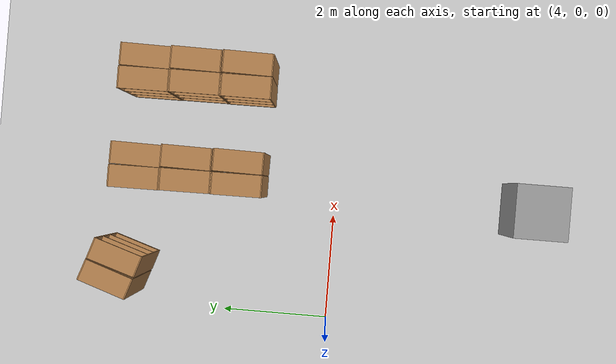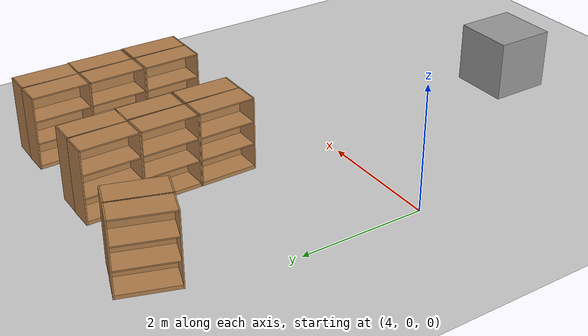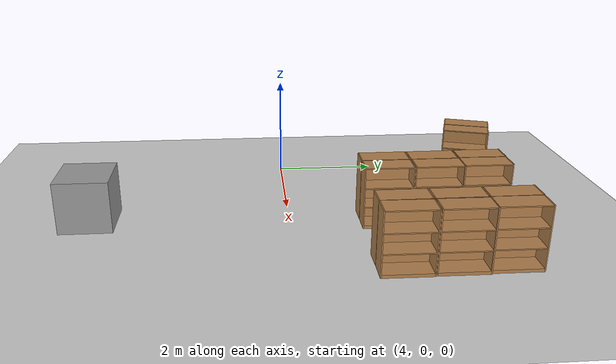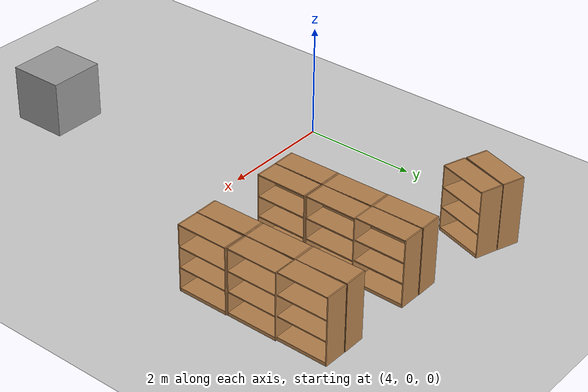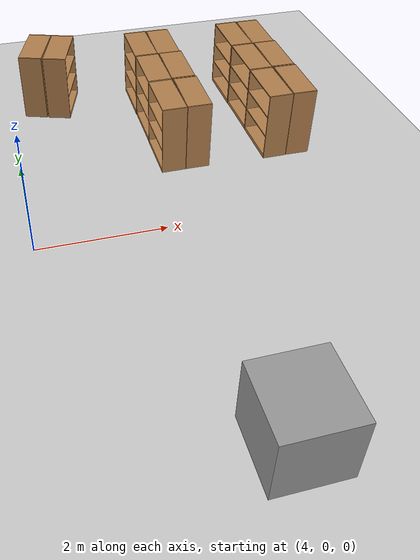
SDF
<sdf version="1.7">
 <world name="default">
  <model name="bookshelf_0">
   <static>1</static>
   <link name="link">
    <inertial><mass>1</mass></inertial>
    <collision name="back">
     <pose>0 0.005 0.6 0 -0 0</pose>
     <geometry><box><size>0.9 0.01 1.2</size></box></geometry>
    </collision>
    <visual name="visual1">
     <pose>0 0.005 0.6 0 -0 0</pose>
     <geometry><box><size>0.9 0.01 1.2</size></box></geometry>
     <material>
      <script><uri>file://media/materials/scripts/gazebo.material</uri><name>Gazebo/Wood</name></script>
     </material>
    </visual>
    <collision name="left_side">
     <pose>0.45 -0.195 0.6 0 -0 0</pose>
     <geometry><box><size>0.02 0.4 1.2</size></box></geometry>
    </collision>
    <visual name="visual2">
     <pose>0.45 -0.195 0.6 0 -0 0</pose>
     <geometry><box><size>0.02 0.4 1.2</size></box></geometry>
     <material>
      <script><uri>file://media/materials/scripts/gazebo.material</uri><name>Gazebo/Wood</name></script>
     </material>
    </visual>
    <collision name="right_side">
     <pose>-0.45 -0.195 0.6 0 -0 0</pose>
     <geometry><box><size>0.02 0.4 1.2</size></box></geometry>
    </collision>
    <visual name="visual3">
     <pose>-0.45 -0.195 0.6 0 -0 0</pose>
     <geometry><box><size>0.02 0.4 1.2</size></box></geometry>
     <material>
      <script><uri>file://media/materials/scripts/gazebo.material</uri><name>Gazebo/Wood</name></script>
     </material>
    </visual>
    <collision name="bottom">
     <pose>0 -0.195 0.03 0 -0 0</pose>
     <geometry><box><size>0.88 0.4 0.06</size></box></geometry>
    </collision>
    <visual name="visual4">
     <pose>0 -0.195 0.03 0 -0 0</pose>
     <geometry><box><size>0.88 0.4 0.06</size></box></geometry>
     <material>
      <script><uri>file://media/materials/scripts/gazebo.material</uri><name>Gazebo/Wood</name></script>
     </material>
    </visual>
    <collision name="top">
     <pose>0 -0.195 1.19 0 -0 0</pose>
     <geometry><box><size>0.88 0.4 0.02</size></box></geometry>
    </collision>
    <visual name="visual5">
     <pose>0 -0.195 1.19 0 -0 0</pose>
     <geometry><box><size>0.88 0.4 0.02</size></box></geometry>
     <material>
      <script><uri>file://media/materials/scripts/gazebo.material</uri><name>Gazebo/Wood</name></script>
     </material>
    </visual>
    <collision name="low_shelf">
     <pose>0 -0.195 0.43 0 -0 0</pose>
     <geometry><box><size>0.88 0.4 0.02</size></box></geometry>
    </collision>
    <visual name="visual6">
     <pose>0 -0.195 0.43 0 -0 0</pose>
     <geometry><box><size>0.88 0.4 0.02</size></box></geometry>
     <material>
      <script><uri>file://media/materials/scripts/gazebo.material</uri><name>Gazebo/Wood</name></script>
     </material>
    </visual>
    <collision name="high_shelf">
     <pose>0 -0.195 0.8 0 -0 0</pose>
     <geometry><box><size>0.88 0.4 0.02</size></box></geometry>
    </collision>
    <visual name="visual7">
     <pose>0 -0.195 0.8 0 -0 0</pose>
     <geometry><box><size>0.88 0.4 0.02</size></box></geometry>
     <material>
      <script><uri>file://media/materials/scripts/gazebo.material</uri><name>Gazebo/Wood</name></script>
     </material>
    </visual>
   </link>
   <pose>4.80639 3.91295 0 0 -0 1.26109</pose>
  </model>
  <model name="bookshelf_0_clone_0">
   <static>1</static>
   <link name="link">
    <inertial><mass>1</mass></inertial>
    <collision name="back">
     <pose>0 0.005 0.6 0 -0 0</pose>
     <geometry><box><size>0.9 0.01 1.2</size></box></geometry>
    </collision>
    <visual name="visual1">
     <pose>0 0.005 0.6 0 -0 0</pose>
     <geometry><box><size>0.9 0.01 1.2</size></box></geometry>
     <material>
      <script><uri>file://media/materials/scripts/gazebo.material</uri><name>Gazebo/Wood</name></script>
     </material>
    </visual>
    <collision name="left_side">
     <pose>0.45 -0.195 0.6 0 -0 0</pose>
     <geometry><box><size>0.02 0.4 1.2</size></box></geometry>
    </collision>
    <visual name="visual2">
     <pose>0.45 -0.195 0.6 0 -0 0</pose>
     <geometry><box><size>0.02 0.4 1.2</size></box></geometry>
     <material>
      <script><uri>file://media/materials/scripts/gazebo.material</uri><name>Gazebo/Wood</name></script>
     </material>
    </visual>
    <collision name="right_side">
     <pose>-0.45 -0.195 0.6 0 -0 0</pose>
     <geometry><box><size>0.02 0.4 1.2</size></box></geometry>
    </collision>
    <visual name="visual3">
     <pose>-0.45 -0.195 0.6 0 -0 0</pose>
     <geometry><box><size>0.02 0.4 1.2</size></box></geometry>
     <material>
      <script><uri>file://media/materials/scripts/gazebo.material</uri><name>Gazebo/Wood</name></script>
     </material>
    </visual>
    <collision name="bottom">
     <pose>0 -0.195 0.03 0 -0 0</pose>
     <geometry><box><size>0.88 0.4 0.06</size></box></geometry>
    </collision>
    <visual name="visual4">
     <pose>0 -0.195 0.03 0 -0 0</pose>
     <geometry><box><size>0.88 0.4 0.06</size></box></geometry>
     <material>
      <script><uri>file://media/materials/scripts/gazebo.material</uri><name>Gazebo/Wood</name></script>
     </material>
    </visual>
    <collision name="top">
     <pose>0 -0.195 1.19 0 -0 0</pose>
     <geometry><box><size>0.88 0.4 0.02</size></box></geometry>
    </collision>
    <visual name="visual5">
     <pose>0 -0.195 1.19 0 -0 0</pose>
     <geometry><box><size>0.88 0.4 0.02</size></box></geometry>
     <material>
      <script><uri>file://media/materials/scripts/gazebo.material</uri><name>Gazebo/Wood</name></script>
     </material>
    </visual>
    <collision name="low_shelf">
     <pose>0 -0.195 0.43 0 -0 0</pose>
     <geometry><box><size>0.88 0.4 0.02</size></box></geometry>
    </collision>
    <visual name="visual6">
     <pose>0 -0.195 0.43 0 -0 0</pose>
     <geometry><box><size>0.88 0.4 0.02</size></box></geometry>
     <material>
      <script><uri>file://media/materials/scripts/gazebo.material</uri><name>Gazebo/Wood</name></script>
     </material>
    </visual>
    <collision name="high_shelf">
     <pose>0 -0.195 0.8 0 -0 0</pose>
     <geometry><box><size>0.88 0.4 0.02</size></box></geometry>
    </collision>
    <visual name="visual7">
     <pose>0 -0.195 0.8 0 -0 0</pose>
     <geometry><box><size>0.88 0.4 0.02</size></box></geometry>
     <material>
      <script><uri>file://media/materials/scripts/gazebo.material</uri><name>Gazebo/Wood</name></script>
     </material>
    </visual>
   </link>
   <pose>4.77838 3.92641 0 0 -0 -1.89584</pose>
  </model>
  <model name="booookshelf_2">
   <model name="bookshelf">
    <static>1</static>
    <link name="link">
     <inertial><mass>1</mass></inertial>
     <collision name="back">
      <pose>0 0.005 0.6 0 -0 0</pose>
      <geometry><box><size>0.9 0.01 1.2</size></box></geometry>
     </collision>
     <visual name="visual1">
      <pose>0 0.005 0.6 0 -0 0</pose>
      <geometry><box><size>0.9 0.01 1.2</size></box></geometry>
      <material>
       <script><uri>file://media/materials/scripts/gazebo.material</uri><name>Gazebo/Wood</name></script>
      </material>
     </visual>
     <collision name="left_side">
      <pose>0.45 -0.195 0.6 0 -0 0</pose>
      <geometry><box><size>0.02 0.4 1.2</size></box></geometry>
     </collision>
     <visual name="visual2">
      <pose>0.45 -0.195 0.6 0 -0 0</pose>
      <geometry><box><size>0.02 0.4 1.2</size></box></geometry>
      <material>
       <script><uri>file://media/materials/scripts/gazebo.material</uri><name>Gazebo/Wood</name></script>
      </material>
     </visual>
     <collision name="right_side">
      <pose>-0.45 -0.195 0.6 0 -0 0</pose>
      <geometry><box><size>0.02 0.4 1.2</size></box></geometry>
     </collision>
     <visual name="visual3">
      <pose>-0.45 -0.195 0.6 0 -0 0</pose>
      <geometry><box><size>0.02 0.4 1.2</size></box></geometry>
      <material>
       <script><uri>file://media/materials/scripts/gazebo.material</uri><name>Gazebo/Wood</name></script>
      </material>
     </visual>
     <collision name="bottom">
      <pose>0 -0.195 0.03 0 -0 0</pose>
      <geometry><box><size>0.88 0.4 0.06</size></box></geometry>
     </collision>
     <visual name="visual4">
      <pose>0 -0.195 0.03 0 -0 0</pose>
      <geometry><box><size>0.88 0.4 0.06</size></box></geometry>
      <material>
       <script><uri>file://media/materials/scripts/gazebo.material</uri><name>Gazebo/Wood</name></script>
      </material>
     </visual>
     <collision name="top">
      <pose>0 -0.195 1.19 0 -0 0</pose>
      <geometry><box><size>0.88 0.4 0.02</size></box></geometry>
     </collision>
     <visual name="visual5">
      <pose>0 -0.195 1.19 0 -0 0</pose>
      <geometry><box><size>0.88 0.4 0.02</size></box></geometry>
      <material>
       <script><uri>file://media/materials/scripts/gazebo.material</uri><name>Gazebo/Wood</name></script>
      </material>
     </visual>
     <collision name="low_shelf">
      <pose>0 -0.195 0.43 0 -0 0</pose>
      <geometry><box><size>0.88 0.4 0.02</size></box></geometry>
     </collision>
     <visual name="visual6">
      <pose>0 -0.195 0.43 0 -0 0</pose>
      <geometry><box><size>0.88 0.4 0.02</size></box></geometry>
      <material>
       <script><uri>file://media/materials/scripts/gazebo.material</uri><name>Gazebo/Wood</name></script>
      </material>
     </visual>
     <collision name="high_shelf">
      <pose>0 -0.195 0.8 0 -0 0</pose>
      <geometry><box><size>0.88 0.4 0.02</size></box></geometry>
     </collision>
     <visual name="visual7">
      <pose>0 -0.195 0.8 0 -0 0</pose>
      <geometry><box><size>0.88 0.4 0.02</size></box></geometry>
      <material>
       <script><uri>file://media/materials/scripts/gazebo.material</uri><name>Gazebo/Wood</name></script>
      </material>
     </visual>
    </link>
    <pose>-0.009683 0.000159 0 0 0 -1.56493</pose>
   </model>
   <model name="bookshelf_clone">
    <static>1</static>
    <link name="link">
     <inertial><mass>1</mass></inertial>
     <collision name="back">
      <pose>0 0.005 0.6 0 -0 0</pose>
      <geometry><box><size>0.9 0.01 1.2</size></box></geometry>
     </collision>
     <visual name="visual1">
      <pose>0 0.005 0.6 0 -0 0</pose>
      <geometry><box><size>0.9 0.01 1.2</size></box></geometry>
      <material>
       <script><uri>file://media/materials/scripts/gazebo.material</uri><name>Gazebo/Wood</name></script>
      </material>
     </visual>
     <collision name="left_side">
      <pose>0.45 -0.195 0.6 0 -0 0</pose>
      <geometry><box><size>0.02 0.4 1.2</size></box></geometry>
     </collision>
     <visual name="visual2">
      <pose>0.45 -0.195 0.6 0 -0 0</pose>
      <geometry><box><size>0.02 0.4 1.2</size></box></geometry>
      <material>
       <script><uri>file://media/materials/scripts/gazebo.material</uri><name>Gazebo/Wood</name></script>
      </material>
     </visual>
     <collision name="right_side">
      <pose>-0.45 -0.195 0.6 0 -0 0</pose>
      <geometry><box><size>0.02 0.4 1.2</size></box></geometry>
     </collision>
     <visual name="visual3">
      <pose>-0.45 -0.195 0.6 0 -0 0</pose>
      <geometry><box><size>0.02 0.4 1.2</size></box></geometry>
      <material>
       <script><uri>file://media/materials/scripts/gazebo.material</uri><name>Gazebo/Wood</name></script>
      </material>
     </visual>
     <collision name="bottom">
      <pose>0 -0.195 0.03 0 -0 0</pose>
      <geometry><box><size>0.88 0.4 0.06</size></box></geometry>
     </collision>
     <visual name="visual4">
      <pose>0 -0.195 0.03 0 -0 0</pose>
      <geometry><box><size>0.88 0.4 0.06</size></box></geometry>
      <material>
       <script><uri>file://media/materials/scripts/gazebo.material</uri><name>Gazebo/Wood</name></script>
      </material>
     </visual>
     <collision name="top">
      <pose>0 -0.195 1.19 0 -0 0</pose>
      <geometry><box><size>0.88 0.4 0.02</size></box></geometry>
     </collision>
     <visual name="visual5">
      <pose>0 -0.195 1.19 0 -0 0</pose>
      <geometry><box><size>0.88 0.4 0.02</size></box></geometry>
      <material>
       <script><uri>file://media/materials/scripts/gazebo.material</uri><name>Gazebo/Wood</name></script>
      </material>
     </visual>
     <collision name="low_shelf">
      <pose>0 -0.195 0.43 0 -0 0</pose>
      <geometry><box><size>0.88 0.4 0.02</size></box></geometry>
     </collision>
     <visual name="visual6">
      <pose>0 -0.195 0.43 0 -0 0</pose>
      <geometry><box><size>0.88 0.4 0.02</size></box></geometry>
      <material>
       <script><uri>file://media/materials/scripts/gazebo.material</uri><name>Gazebo/Wood</name></script>
      </material>
     </visual>
     <collision name="high_shelf">
      <pose>0 -0.195 0.8 0 -0 0</pose>
      <geometry><box><size>0.88 0.4 0.02</size></box></geometry>
     </collision>
     <visual name="visual7">
      <pose>0 -0.195 0.8 0 -0 0</pose>
      <geometry><box><size>0.88 0.4 0.02</size></box></geometry>
      <material>
       <script><uri>file://media/materials/scripts/gazebo.material</uri><name>Gazebo/Wood</name></script>
      </material>
     </visual>
    </link>
    <pose>-0.008394 -0.921313 0 0 0 -1.56493</pose>
   </model>
   <model name="bookshelf_clone_0">
    <static>1</static>
    <link name="link">
     <inertial><mass>1</mass></inertial>
     <collision name="back">
      <pose>0 0.005 0.6 0 -0 0</pose>
      <geometry><box><size>0.9 0.01 1.2</size></box></geometry>
     </collision>
     <visual name="visual1">
      <pose>0 0.005 0.6 0 -0 0</pose>
      <geometry><box><size>0.9 0.01 1.2</size></box></geometry>
      <material>
       <script><uri>file://media/materials/scripts/gazebo.material</uri><name>Gazebo/Wood</name></script>
      </material>
     </visual>
     <collision name="left_side">
      <pose>0.45 -0.195 0.6 0 -0 0</pose>
      <geometry><box><size>0.02 0.4 1.2</size></box></geometry>
     </collision>
     <visual name="visual2">
      <pose>0.45 -0.195 0.6 0 -0 0</pose>
      <geometry><box><size>0.02 0.4 1.2</size></box></geometry>
      <material>
       <script><uri>file://media/materials/scripts/gazebo.material</uri><name>Gazebo/Wood</name></script>
      </material>
     </visual>
     <collision name="right_side">
      <pose>-0.45 -0.195 0.6 0 -0 0</pose>
      <geometry><box><size>0.02 0.4 1.2</size></box></geometry>
     </collision>
     <visual name="visual3">
      <pose>-0.45 -0.195 0.6 0 -0 0</pose>
      <geometry><box><size>0.02 0.4 1.2</size></box></geometry>
      <material>
       <script><uri>file://media/materials/scripts/gazebo.material</uri><name>Gazebo/Wood</name></script>
      </material>
     </visual>
     <collision name="bottom">
      <pose>0 -0.195 0.03 0 -0 0</pose>
      <geometry><box><size>0.88 0.4 0.06</size></box></geometry>
     </collision>
     <visual name="visual4">
      <pose>0 -0.195 0.03 0 -0 0</pose>
      <geometry><box><size>0.88 0.4 0.06</size></box></geometry>
      <material>
       <script><uri>file://media/materials/scripts/gazebo.material</uri><name>Gazebo/Wood</name></script>
      </material>
     </visual>
     <collision name="top">
      <pose>0 -0.195 1.19 0 -0 0</pose>
      <geometry><box><size>0.88 0.4 0.02</size></box></geometry>
     </collision>
     <visual name="visual5">
      <pose>0 -0.195 1.19 0 -0 0</pose>
      <geometry><box><size>0.88 0.4 0.02</size></box></geometry>
      <material>
       <script><uri>file://media/materials/scripts/gazebo.material</uri><name>Gazebo/Wood</name></script>
      </material>
     </visual>
     <collision name="low_shelf">
      <pose>0 -0.195 0.43 0 -0 0</pose>
      <geometry><box><size>0.88 0.4 0.02</size></box></geometry>
     </collision>
     <visual name="visual6">
      <pose>0 -0.195 0.43 0 -0 0</pose>
      <geometry><box><size>0.88 0.4 0.02</size></box></geometry>
      <material>
       <script><uri>file://media/materials/scripts/gazebo.material</uri><name>Gazebo/Wood</name></script>
      </material>
     </visual>
     <collision name="high_shelf">
      <pose>0 -0.195 0.8 0 -0 0</pose>
      <geometry><box><size>0.88 0.4 0.02</size></box></geometry>
     </collision>
     <visual name="visual7">
      <pose>0 -0.195 0.8 0 -0 0</pose>
      <geometry><box><size>0.88 0.4 0.02</size></box></geometry>
      <material>
       <script><uri>file://media/materials/scripts/gazebo.material</uri><name>Gazebo/Wood</name></script>
      </material>
     </visual>
    </link>
    <pose>-0.020188 0.9173 0 0 0 -1.56493</pose>
   </model>
   <model name="bookshelf_clone_1">
    <static>1</static>
    <link name="link">
     <inertial><mass>1</mass></inertial>
     <collision name="back">
      <pose>0 0.005 0.6 0 -0 0</pose>
      <geometry><box><size>0.9 0.01 1.2</size></box></geometry>
     </collision>
     <visual name="visual1">
      <pose>0 0.005 0.6 0 -0 0</pose>
      <geometry><box><size>0.9 0.01 1.2</size></box></geometry>
      <material>
       <script><uri>file://media/materials/scripts/gazebo.material</uri><name>Gazebo/Wood</name></script>
      </material>
     </visual>
     <collision name="left_side">
      <pose>0.45 -0.195 0.6 0 -0 0</pose>
      <geometry><box><size>0.02 0.4 1.2</size></box></geometry>
     </collision>
     <visual name="visual2">
      <pose>0.45 -0.195 0.6 0 -0 0</pose>
      <geometry><box><size>0.02 0.4 1.2</size></box></geometry>
      <material>
       <script><uri>file://media/materials/scripts/gazebo.material</uri><name>Gazebo/Wood</name></script>
      </material>
     </visual>
     <collision name="right_side">
      <pose>-0.45 -0.195 0.6 0 -0 0</pose>
      <geometry><box><size>0.02 0.4 1.2</size></box></geometry>
     </collision>
     <visual name="visual3">
      <pose>-0.45 -0.195 0.6 0 -0 0</pose>
      <geometry><box><size>0.02 0.4 1.2</size></box></geometry>
      <material>
       <script><uri>file://media/materials/scripts/gazebo.material</uri><name>Gazebo/Wood</name></script>
      </material>
     </visual>
     <collision name="bottom">
      <pose>0 -0.195 0.03 0 -0 0</pose>
      <geometry><box><size>0.88 0.4 0.06</size></box></geometry>
     </collision>
     <visual name="visual4">
      <pose>0 -0.195 0.03 0 -0 0</pose>
      <geometry><box><size>0.88 0.4 0.06</size></box></geometry>
      <material>
       <script><uri>file://media/materials/scripts/gazebo.material</uri><name>Gazebo/Wood</name></script>
      </material>
     </visual>
     <collision name="top">
      <pose>0 -0.195 1.19 0 -0 0</pose>
      <geometry><box><size>0.88 0.4 0.02</size></box></geometry>
     </collision>
     <visual name="visual5">
      <pose>0 -0.195 1.19 0 -0 0</pose>
      <geometry><box><size>0.88 0.4 0.02</size></box></geometry>
      <material>
       <script><uri>file://media/materials/scripts/gazebo.material</uri><name>Gazebo/Wood</name></script>
      </material>
     </visual>
     <collision name="low_shelf">
      <pose>0 -0.195 0.43 0 -0 0</pose>
      <geometry><box><size>0.88 0.4 0.02</size></box></geometry>
     </collision>
     <visual name="visual6">
      <pose>0 -0.195 0.43 0 -0 0</pose>
      <geometry><box><size>0.88 0.4 0.02</size></box></geometry>
      <material>
       <script><uri>file://media/materials/scripts/gazebo.material</uri><name>Gazebo/Wood</name></script>
      </material>
     </visual>
     <collision name="high_shelf">
      <pose>0 -0.195 0.8 0 -0 0</pose>
      <geometry><box><size>0.88 0.4 0.02</size></box></geometry>
     </collision>
     <visual name="visual7">
      <pose>0 -0.195 0.8 0 -0 0</pose>
      <geometry><box><size>0.88 0.4 0.02</size></box></geometry>
      <material>
       <script><uri>file://media/materials/scripts/gazebo.material</uri><name>Gazebo/Wood</name></script>
      </material>
     </visual>
    </link>
    <pose>0.019389 -0.918185 0 0 -0 1.55949</pose>
   </model>
   <model name="bookshelf_clone_1_clone">
    <static>1</static>
    <link name="link">
     <inertial><mass>1</mass></inertial>
     <collision name="back">
      <pose>0 0.005 0.6 0 -0 0</pose>
      <geometry><box><size>0.9 0.01 1.2</size></box></geometry>
     </collision>
     <visual name="visual1">
      <pose>0 0.005 0.6 0 -0 0</pose>
      <geometry><box><size>0.9 0.01 1.2</size></box></geometry>
      <material>
       <script><uri>file://media/materials/scripts/gazebo.material</uri><name>Gazebo/Wood</name></script>
      </material>
     </visual>
     <collision name="left_side">
      <pose>0.45 -0.195 0.6 0 -0 0</pose>
      <geometry><box><size>0.02 0.4 1.2</size></box></geometry>
     </collision>
     <visual name="visual2">
      <pose>0.45 -0.195 0.6 0 -0 0</pose>
      <geometry><box><size>0.02 0.4 1.2</size></box></geometry>
      <material>
       <script><uri>file://media/materials/scripts/gazebo.material</uri><name>Gazebo/Wood</name></script>
      </material>
     </visual>
     <collision name="right_side">
      <pose>-0.45 -0.195 0.6 0 -0 0</pose>
      <geometry><box><size>0.02 0.4 1.2</size></box></geometry>
     </collision>
     <visual name="visual3">
      <pose>-0.45 -0.195 0.6 0 -0 0</pose>
      <geometry><box><size>0.02 0.4 1.2</size></box></geometry>
      <material>
       <script><uri>file://media/materials/scripts/gazebo.material</uri><name>Gazebo/Wood</name></script>
      </material>
     </visual>
     <collision name="bottom">
      <pose>0 -0.195 0.03 0 -0 0</pose>
      <geometry><box><size>0.88 0.4 0.06</size></box></geometry>
     </collision>
     <visual name="visual4">
      <pose>0 -0.195 0.03 0 -0 0</pose>
      <geometry><box><size>0.88 0.4 0.06</size></box></geometry>
      <material>
       <script><uri>file://media/materials/scripts/gazebo.material</uri><name>Gazebo/Wood</name></script>
      </material>
     </visual>
     <collision name="top">
      <pose>0 -0.195 1.19 0 -0 0</pose>
      <geometry><box><size>0.88 0.4 0.02</size></box></geometry>
     </collision>
     <visual name="visual5">
      <pose>0 -0.195 1.19 0 -0 0</pose>
      <geometry><box><size>0.88 0.4 0.02</size></box></geometry>
      <material>
       <script><uri>file://media/materials/scripts/gazebo.material</uri><name>Gazebo/Wood</name></script>
      </material>
     </visual>
     <collision name="low_shelf">
      <pose>0 -0.195 0.43 0 -0 0</pose>
      <geometry><box><size>0.88 0.4 0.02</size></box></geometry>
     </collision>
     <visual name="visual6">
      <pose>0 -0.195 0.43 0 -0 0</pose>
      <geometry><box><size>0.88 0.4 0.02</size></box></geometry>
      <material>
       <script><uri>file://media/materials/scripts/gazebo.material</uri><name>Gazebo/Wood</name></script>
      </material>
     </visual>
     <collision name="high_shelf">
      <pose>0 -0.195 0.8 0 -0 0</pose>
      <geometry><box><size>0.88 0.4 0.02</size></box></geometry>
     </collision>
     <visual name="visual7">
      <pose>0 -0.195 0.8 0 -0 0</pose>
      <geometry><box><size>0.88 0.4 0.02</size></box></geometry>
      <material>
       <script><uri>file://media/materials/scripts/gazebo.material</uri><name>Gazebo/Wood</name></script>
      </material>
     </visual>
    </link>
    <pose>0.016888 0.010932 0 0 -0 1.55949</pose>
   </model>
   <model name="bookshelf_clone_1_clone_0">
    <static>1</static>
    <link name="link">
     <inertial><mass>1</mass></inertial>
     <collision name="back">
      <pose>0 0.005 0.6 0 -0 0</pose>
      <geometry><box><size>0.9 0.01 1.2</size></box></geometry>
     </collision>
     <visual name="visual1">
      <pose>0 0.005 0.6 0 -0 0</pose>
      <geometry><box><size>0.9 0.01 1.2</size></box></geometry>
      <material>
       <script><uri>file://media/materials/scripts/gazebo.material</uri><name>Gazebo/Wood</name></script>
      </material>
     </visual>
     <collision name="left_side">
      <pose>0.45 -0.195 0.6 0 -0 0</pose>
      <geometry><box><size>0.02 0.4 1.2</size></box></geometry>
     </collision>
     <visual name="visual2">
      <pose>0.45 -0.195 0.6 0 -0 0</pose>
      <geometry><box><size>0.02 0.4 1.2</size></box></geometry>
      <material>
       <script><uri>file://media/materials/scripts/gazebo.material</uri><name>Gazebo/Wood</name></script>
      </material>
     </visual>
     <collision name="right_side">
      <pose>-0.45 -0.195 0.6 0 -0 0</pose>
      <geometry><box><size>0.02 0.4 1.2</size></box></geometry>
     </collision>
     <visual name="visual3">
      <pose>-0.45 -0.195 0.6 0 -0 0</pose>
      <geometry><box><size>0.02 0.4 1.2</size></box></geometry>
      <material>
       <script><uri>file://media/materials/scripts/gazebo.material</uri><name>Gazebo/Wood</name></script>
      </material>
     </visual>
     <collision name="bottom">
      <pose>0 -0.195 0.03 0 -0 0</pose>
      <geometry><box><size>0.88 0.4 0.06</size></box></geometry>
     </collision>
     <visual name="visual4">
      <pose>0 -0.195 0.03 0 -0 0</pose>
      <geometry><box><size>0.88 0.4 0.06</size></box></geometry>
      <material>
       <script><uri>file://media/materials/scripts/gazebo.material</uri><name>Gazebo/Wood</name></script>
      </material>
     </visual>
     <collision name="top">
      <pose>0 -0.195 1.19 0 -0 0</pose>
      <geometry><box><size>0.88 0.4 0.02</size></box></geometry>
     </collision>
     <visual name="visual5">
      <pose>0 -0.195 1.19 0 -0 0</pose>
      <geometry><box><size>0.88 0.4 0.02</size></box></geometry>
      <material>
       <script><uri>file://media/materials/scripts/gazebo.material</uri><name>Gazebo/Wood</name></script>
      </material>
     </visual>
     <collision name="low_shelf">
      <pose>0 -0.195 0.43 0 -0 0</pose>
      <geometry><box><size>0.88 0.4 0.02</size></box></geometry>
     </collision>
     <visual name="visual6">
      <pose>0 -0.195 0.43 0 -0 0</pose>
      <geometry><box><size>0.88 0.4 0.02</size></box></geometry>
      <material>
       <script><uri>file://media/materials/scripts/gazebo.material</uri><name>Gazebo/Wood</name></script>
      </material>
     </visual>
     <collision name="high_shelf">
      <pose>0 -0.195 0.8 0 -0 0</pose>
      <geometry><box><size>0.88 0.4 0.02</size></box></geometry>
     </collision>
     <visual name="visual7">
      <pose>0 -0.195 0.8 0 -0 0</pose>
      <geometry><box><size>0.88 0.4 0.02</size></box></geometry>
      <material>
       <script><uri>file://media/materials/scripts/gazebo.material</uri><name>Gazebo/Wood</name></script>
      </material>
     </visual>
    </link>
    <pose>0.001995 0.911101 0 0 -0 1.55949</pose>
   </model>
   <static>0</static>
   <pose>6.66354 2.71621 0 0 -0 0</pose>
  </model>
  <model name="booookshelf_3">
   <model name="bookshelf">
    <static>1</static>
    <link name="link">
     <inertial><mass>1</mass></inertial>
     <collision name="back">
      <pose>0 0.005 0.6 0 -0 0</pose>
      <geometry><box><size>0.9 0.01 1.2</size></box></geometry>
     </collision>
     <visual name="visual1">
      <pose>0 0.005 0.6 0 -0 0</pose>
      <geometry><box><size>0.9 0.01 1.2</size></box></geometry>
      <material>
       <script><uri>file://media/materials/scripts/gazebo.material</uri><name>Gazebo/Wood</name></script>
      </material>
     </visual>
     <collision name="left_side">
      <pose>0.45 -0.195 0.6 0 -0 0</pose>
      <geometry><box><size>0.02 0.4 1.2</size></box></geometry>
     </collision>
     <visual name="visual2">
      <pose>0.45 -0.195 0.6 0 -0 0</pose>
      <geometry><box><size>0.02 0.4 1.2</size></box></geometry>
      <material>
       <script><uri>file://media/materials/scripts/gazebo.material</uri><name>Gazebo/Wood</name></script>
      </material>
     </visual>
     <collision name="right_side">
      <pose>-0.45 -0.195 0.6 0 -0 0</pose>
      <geometry><box><size>0.02 0.4 1.2</size></box></geometry>
     </collision>
     <visual name="visual3">
      <pose>-0.45 -0.195 0.6 0 -0 0</pose>
      <geometry><box><size>0.02 0.4 1.2</size></box></geometry>
      <material>
       <script><uri>file://media/materials/scripts/gazebo.material</uri><name>Gazebo/Wood</name></script>
      </material>
     </visual>
     <collision name="bottom">
      <pose>0 -0.195 0.03 0 -0 0</pose>
      <geometry><box><size>0.88 0.4 0.06</size></box></geometry>
     </collision>
     <visual name="visual4">
      <pose>0 -0.195 0.03 0 -0 0</pose>
      <geometry><box><size>0.88 0.4 0.06</size></box></geometry>
      <material>
       <script><uri>file://media/materials/scripts/gazebo.material</uri><name>Gazebo/Wood</name></script>
      </material>
     </visual>
     <collision name="top">
      <pose>0 -0.195 1.19 0 -0 0</pose>
      <geometry><box><size>0.88 0.4 0.02</size></box></geometry>
     </collision>
     <visual name="visual5">
      <pose>0 -0.195 1.19 0 -0 0</pose>
      <geometry><box><size>0.88 0.4 0.02</size></box></geometry>
      <material>
       <script><uri>file://media/materials/scripts/gazebo.material</uri><name>Gazebo/Wood</name></script>
      </material>
     </visual>
     <collision name="low_shelf">
      <pose>0 -0.195 0.43 0 -0 0</pose>
      <geometry><box><size>0.88 0.4 0.02</size></box></geometry>
     </collision>
     <visual name="visual6">
      <pose>0 -0.195 0.43 0 -0 0</pose>
      <geometry><box><size>0.88 0.4 0.02</size></box></geometry>
      <material>
       <script><uri>file://media/materials/scripts/gazebo.material</uri><name>Gazebo/Wood</name></script>
      </material>
     </visual>
     <collision name="high_shelf">
      <pose>0 -0.195 0.8 0 -0 0</pose>
      <geometry><box><size>0.88 0.4 0.02</size></box></geometry>
     </collision>
     <visual name="visual7">
      <pose>0 -0.195 0.8 0 -0 0</pose>
      <geometry><box><size>0.88 0.4 0.02</size></box></geometry>
      <material>
       <script><uri>file://media/materials/scripts/gazebo.material</uri><name>Gazebo/Wood</name></script>
      </material>
     </visual>
    </link>
    <pose>-0.009683 0.000159 0 0 0 -1.56493</pose>
   </model>
   <model name="bookshelf_clone">
    <static>1</static>
    <link name="link">
     <inertial><mass>1</mass></inertial>
     <collision name="back">
      <pose>0 0.005 0.6 0 -0 0</pose>
      <geometry><box><size>0.9 0.01 1.2</size></box></geometry>
     </collision>
     <visual name="visual1">
      <pose>0 0.005 0.6 0 -0 0</pose>
      <geometry><box><size>0.9 0.01 1.2</size></box></geometry>
      <material>
       <script><uri>file://media/materials/scripts/gazebo.material</uri><name>Gazebo/Wood</name></script>
      </material>
     </visual>
     <collision name="left_side">
      <pose>0.45 -0.195 0.6 0 -0 0</pose>
      <geometry><box><size>0.02 0.4 1.2</size></box></geometry>
     </collision>
     <visual name="visual2">
      <pose>0.45 -0.195 0.6 0 -0 0</pose>
      <geometry><box><size>0.02 0.4 1.2</size></box></geometry>
      <material>
       <script><uri>file://media/materials/scripts/gazebo.material</uri><name>Gazebo/Wood</name></script>
      </material>
     </visual>
     <collision name="right_side">
      <pose>-0.45 -0.195 0.6 0 -0 0</pose>
      <geometry><box><size>0.02 0.4 1.2</size></box></geometry>
     </collision>
     <visual name="visual3">
      <pose>-0.45 -0.195 0.6 0 -0 0</pose>
      <geometry><box><size>0.02 0.4 1.2</size></box></geometry>
      <material>
       <script><uri>file://media/materials/scripts/gazebo.material</uri><name>Gazebo/Wood</name></script>
      </material>
     </visual>
     <collision name="bottom">
      <pose>0 -0.195 0.03 0 -0 0</pose>
      <geometry><box><size>0.88 0.4 0.06</size></box></geometry>
     </collision>
     <visual name="visual4">
      <pose>0 -0.195 0.03 0 -0 0</pose>
      <geometry><box><size>0.88 0.4 0.06</size></box></geometry>
      <material>
       <script><uri>file://media/materials/scripts/gazebo.material</uri><name>Gazebo/Wood</name></script>
      </material>
     </visual>
     <collision name="top">
      <pose>0 -0.195 1.19 0 -0 0</pose>
      <geometry><box><size>0.88 0.4 0.02</size></box></geometry>
     </collision>
     <visual name="visual5">
      <pose>0 -0.195 1.19 0 -0 0</pose>
      <geometry><box><size>0.88 0.4 0.02</size></box></geometry>
      <material>
       <script><uri>file://media/materials/scripts/gazebo.material</uri><name>Gazebo/Wood</name></script>
      </material>
     </visual>
     <collision name="low_shelf">
      <pose>0 -0.195 0.43 0 -0 0</pose>
      <geometry><box><size>0.88 0.4 0.02</size></box></geometry>
     </collision>
     <visual name="visual6">
      <pose>0 -0.195 0.43 0 -0 0</pose>
      <geometry><box><size>0.88 0.4 0.02</size></box></geometry>
      <material>
       <script><uri>file://media/materials/scripts/gazebo.material</uri><name>Gazebo/Wood</name></script>
      </material>
     </visual>
     <collision name="high_shelf">
      <pose>0 -0.195 0.8 0 -0 0</pose>
      <geometry><box><size>0.88 0.4 0.02</size></box></geometry>
     </collision>
     <visual name="visual7">
      <pose>0 -0.195 0.8 0 -0 0</pose>
      <geometry><box><size>0.88 0.4 0.02</size></box></geometry>
      <material>
       <script><uri>file://media/materials/scripts/gazebo.material</uri><name>Gazebo/Wood</name></script>
      </material>
     </visual>
    </link>
    <pose>-0.008394 -0.921313 0 0 0 -1.56493</pose>
   </model>
   <model name="bookshelf_clone_0">
    <static>1</static>
    <link name="link">
     <inertial><mass>1</mass></inertial>
     <collision name="back">
      <pose>0 0.005 0.6 0 -0 0</pose>
      <geometry><box><size>0.9 0.01 1.2</size></box></geometry>
     </collision>
     <visual name="visual1">
      <pose>0 0.005 0.6 0 -0 0</pose>
      <geometry><box><size>0.9 0.01 1.2</size></box></geometry>
      <material>
       <script><uri>file://media/materials/scripts/gazebo.material</uri><name>Gazebo/Wood</name></script>
      </material>
     </visual>
     <collision name="left_side">
      <pose>0.45 -0.195 0.6 0 -0 0</pose>
      <geometry><box><size>0.02 0.4 1.2</size></box></geometry>
     </collision>
     <visual name="visual2">
      <pose>0.45 -0.195 0.6 0 -0 0</pose>
      <geometry><box><size>0.02 0.4 1.2</size></box></geometry>
      <material>
       <script><uri>file://media/materials/scripts/gazebo.material</uri><name>Gazebo/Wood</name></script>
      </material>
     </visual>
     <collision name="right_side">
      <pose>-0.45 -0.195 0.6 0 -0 0</pose>
      <geometry><box><size>0.02 0.4 1.2</size></box></geometry>
     </collision>
     <visual name="visual3">
      <pose>-0.45 -0.195 0.6 0 -0 0</pose>
      <geometry><box><size>0.02 0.4 1.2</size></box></geometry>
      <material>
       <script><uri>file://media/materials/scripts/gazebo.material</uri><name>Gazebo/Wood</name></script>
      </material>
     </visual>
     <collision name="bottom">
      <pose>0 -0.195 0.03 0 -0 0</pose>
      <geometry><box><size>0.88 0.4 0.06</size></box></geometry>
     </collision>
     <visual name="visual4">
      <pose>0 -0.195 0.03 0 -0 0</pose>
      <geometry><box><size>0.88 0.4 0.06</size></box></geometry>
      <material>
       <script><uri>file://media/materials/scripts/gazebo.material</uri><name>Gazebo/Wood</name></script>
      </material>
     </visual>
     <collision name="top">
      <pose>0 -0.195 1.19 0 -0 0</pose>
      <geometry><box><size>0.88 0.4 0.02</size></box></geometry>
     </collision>
     <visual name="visual5">
      <pose>0 -0.195 1.19 0 -0 0</pose>
      <geometry><box><size>0.88 0.4 0.02</size></box></geometry>
      <material>
       <script><uri>file://media/materials/scripts/gazebo.material</uri><name>Gazebo/Wood</name></script>
      </material>
     </visual>
     <collision name="low_shelf">
      <pose>0 -0.195 0.43 0 -0 0</pose>
      <geometry><box><size>0.88 0.4 0.02</size></box></geometry>
     </collision>
     <visual name="visual6">
      <pose>0 -0.195 0.43 0 -0 0</pose>
      <geometry><box><size>0.88 0.4 0.02</size></box></geometry>
      <material>
       <script><uri>file://media/materials/scripts/gazebo.material</uri><name>Gazebo/Wood</name></script>
      </material>
     </visual>
     <collision name="high_shelf">
      <pose>0 -0.195 0.8 0 -0 0</pose>
      <geometry><box><size>0.88 0.4 0.02</size></box></geometry>
     </collision>
     <visual name="visual7">
      <pose>0 -0.195 0.8 0 -0 0</pose>
      <geometry><box><size>0.88 0.4 0.02</size></box></geometry>
      <material>
       <script><uri>file://media/materials/scripts/gazebo.material</uri><name>Gazebo/Wood</name></script>
      </material>
     </visual>
    </link>
    <pose>-0.020188 0.9173 0 0 0 -1.56493</pose>
   </model>
   <model name="bookshelf_clone_1">
    <static>1</static>
    <link name="link">
     <inertial><mass>1</mass></inertial>
     <collision name="back">
      <pose>0 0.005 0.6 0 -0 0</pose>
      <geometry><box><size>0.9 0.01 1.2</size></box></geometry>
     </collision>
     <visual name="visual1">
      <pose>0 0.005 0.6 0 -0 0</pose>
      <geometry><box><size>0.9 0.01 1.2</size></box></geometry>
      <material>
       <script><uri>file://media/materials/scripts/gazebo.material</uri><name>Gazebo/Wood</name></script>
      </material>
     </visual>
     <collision name="left_side">
      <pose>0.45 -0.195 0.6 0 -0 0</pose>
      <geometry><box><size>0.02 0.4 1.2</size></box></geometry>
     </collision>
     <visual name="visual2">
      <pose>0.45 -0.195 0.6 0 -0 0</pose>
      <geometry><box><size>0.02 0.4 1.2</size></box></geometry>
      <material>
       <script><uri>file://media/materials/scripts/gazebo.material</uri><name>Gazebo/Wood</name></script>
      </material>
     </visual>
     <collision name="right_side">
      <pose>-0.45 -0.195 0.6 0 -0 0</pose>
      <geometry><box><size>0.02 0.4 1.2</size></box></geometry>
     </collision>
     <visual name="visual3">
      <pose>-0.45 -0.195 0.6 0 -0 0</pose>
      <geometry><box><size>0.02 0.4 1.2</size></box></geometry>
      <material>
       <script><uri>file://media/materials/scripts/gazebo.material</uri><name>Gazebo/Wood</name></script>
      </material>
     </visual>
     <collision name="bottom">
      <pose>0 -0.195 0.03 0 -0 0</pose>
      <geometry><box><size>0.88 0.4 0.06</size></box></geometry>
     </collision>
     <visual name="visual4">
      <pose>0 -0.195 0.03 0 -0 0</pose>
      <geometry><box><size>0.88 0.4 0.06</size></box></geometry>
      <material>
       <script><uri>file://media/materials/scripts/gazebo.material</uri><name>Gazebo/Wood</name></script>
      </material>
     </visual>
     <collision name="top">
      <pose>0 -0.195 1.19 0 -0 0</pose>
      <geometry><box><size>0.88 0.4 0.02</size></box></geometry>
     </collision>
     <visual name="visual5">
      <pose>0 -0.195 1.19 0 -0 0</pose>
      <geometry><box><size>0.88 0.4 0.02</size></box></geometry>
      <material>
       <script><uri>file://media/materials/scripts/gazebo.material</uri><name>Gazebo/Wood</name></script>
      </material>
     </visual>
     <collision name="low_shelf">
      <pose>0 -0.195 0.43 0 -0 0</pose>
      <geometry><box><size>0.88 0.4 0.02</size></box></geometry>
     </collision>
     <visual name="visual6">
      <pose>0 -0.195 0.43 0 -0 0</pose>
      <geometry><box><size>0.88 0.4 0.02</size></box></geometry>
      <material>
       <script><uri>file://media/materials/scripts/gazebo.material</uri><name>Gazebo/Wood</name></script>
      </material>
     </visual>
     <collision name="high_shelf">
      <pose>0 -0.195 0.8 0 -0 0</pose>
      <geometry><box><size>0.88 0.4 0.02</size></box></geometry>
     </collision>
     <visual name="visual7">
      <pose>0 -0.195 0.8 0 -0 0</pose>
      <geometry><box><size>0.88 0.4 0.02</size></box></geometry>
      <material>
       <script><uri>file://media/materials/scripts/gazebo.material</uri><name>Gazebo/Wood</name></script>
      </material>
     </visual>
    </link>
    <pose>0.019389 -0.918185 0 0 -0 1.55949</pose>
   </model>
   <model name="bookshelf_clone_1_clone">
    <static>1</static>
    <link name="link">
     <inertial><mass>1</mass></inertial>
     <collision name="back">
      <pose>0 0.005 0.6 0 -0 0</pose>
      <geometry><box><size>0.9 0.01 1.2</size></box></geometry>
     </collision>
     <visual name="visual1">
      <pose>0 0.005 0.6 0 -0 0</pose>
      <geometry><box><size>0.9 0.01 1.2</size></box></geometry>
      <material>
       <script><uri>file://media/materials/scripts/gazebo.material</uri><name>Gazebo/Wood</name></script>
      </material>
     </visual>
     <collision name="left_side">
      <pose>0.45 -0.195 0.6 0 -0 0</pose>
      <geometry><box><size>0.02 0.4 1.2</size></box></geometry>
     </collision>
     <visual name="visual2">
      <pose>0.45 -0.195 0.6 0 -0 0</pose>
      <geometry><box><size>0.02 0.4 1.2</size></box></geometry>
      <material>
       <script><uri>file://media/materials/scripts/gazebo.material</uri><name>Gazebo/Wood</name></script>
      </material>
     </visual>
     <collision name="right_side">
      <pose>-0.45 -0.195 0.6 0 -0 0</pose>
      <geometry><box><size>0.02 0.4 1.2</size></box></geometry>
     </collision>
     <visual name="visual3">
      <pose>-0.45 -0.195 0.6 0 -0 0</pose>
      <geometry><box><size>0.02 0.4 1.2</size></box></geometry>
      <material>
       <script><uri>file://media/materials/scripts/gazebo.material</uri><name>Gazebo/Wood</name></script>
      </material>
     </visual>
     <collision name="bottom">
      <pose>0 -0.195 0.03 0 -0 0</pose>
      <geometry><box><size>0.88 0.4 0.06</size></box></geometry>
     </collision>
     <visual name="visual4">
      <pose>0 -0.195 0.03 0 -0 0</pose>
      <geometry><box><size>0.88 0.4 0.06</size></box></geometry>
      <material>
       <script><uri>file://media/materials/scripts/gazebo.material</uri><name>Gazebo/Wood</name></script>
      </material>
     </visual>
     <collision name="top">
      <pose>0 -0.195 1.19 0 -0 0</pose>
      <geometry><box><size>0.88 0.4 0.02</size></box></geometry>
     </collision>
     <visual name="visual5">
      <pose>0 -0.195 1.19 0 -0 0</pose>
      <geometry><box><size>0.88 0.4 0.02</size></box></geometry>
      <material>
       <script><uri>file://media/materials/scripts/gazebo.material</uri><name>Gazebo/Wood</name></script>
      </material>
     </visual>
     <collision name="low_shelf">
      <pose>0 -0.195 0.43 0 -0 0</pose>
      <geometry><box><size>0.88 0.4 0.02</size></box></geometry>
     </collision>
     <visual name="visual6">
      <pose>0 -0.195 0.43 0 -0 0</pose>
      <geometry><box><size>0.88 0.4 0.02</size></box></geometry>
      <material>
       <script><uri>file://media/materials/scripts/gazebo.material</uri><name>Gazebo/Wood</name></script>
      </material>
     </visual>
     <collision name="high_shelf">
      <pose>0 -0.195 0.8 0 -0 0</pose>
      <geometry><box><size>0.88 0.4 0.02</size></box></geometry>
     </collision>
     <visual name="visual7">
      <pose>0 -0.195 0.8 0 -0 0</pose>
      <geometry><box><size>0.88 0.4 0.02</size></box></geometry>
      <material>
       <script><uri>file://media/materials/scripts/gazebo.material</uri><name>Gazebo/Wood</name></script>
      </material>
     </visual>
    </link>
    <pose>0.016888 0.010932 0 0 -0 1.55949</pose>
   </model>
   <model name="bookshelf_clone_1_clone_0">
    <static>1</static>
    <link name="link">
     <inertial><mass>1</mass></inertial>
     <collision name="back">
      <pose>0 0.005 0.6 0 -0 0</pose>
      <geometry><box><size>0.9 0.01 1.2</size></box></geometry>
     </collision>
     <visual name="visual1">
      <pose>0 0.005 0.6 0 -0 0</pose>
      <geometry><box><size>0.9 0.01 1.2</size></box></geometry>
      <material>
       <script><uri>file://media/materials/scripts/gazebo.material</uri><name>Gazebo/Wood</name></script>
      </material>
     </visual>
     <collision name="left_side">
      <pose>0.45 -0.195 0.6 0 -0 0</pose>
      <geometry><box><size>0.02 0.4 1.2</size></box></geometry>
     </collision>
     <visual name="visual2">
      <pose>0.45 -0.195 0.6 0 -0 0</pose>
      <geometry><box><size>0.02 0.4 1.2</size></box></geometry>
      <material>
       <script><uri>file://media/materials/scripts/gazebo.material</uri><name>Gazebo/Wood</name></script>
      </material>
     </visual>
     <collision name="right_side">
      <pose>-0.45 -0.195 0.6 0 -0 0</pose>
      <geometry><box><size>0.02 0.4 1.2</size></box></geometry>
     </collision>
     <visual name="visual3">
      <pose>-0.45 -0.195 0.6 0 -0 0</pose>
      <geometry><box><size>0.02 0.4 1.2</size></box></geometry>
      <material>
       <script><uri>file://media/materials/scripts/gazebo.material</uri><name>Gazebo/Wood</name></script>
      </material>
     </visual>
     <collision name="bottom">
      <pose>0 -0.195 0.03 0 -0 0</pose>
      <geometry><box><size>0.88 0.4 0.06</size></box></geometry>
     </collision>
     <visual name="visual4">
      <pose>0 -0.195 0.03 0 -0 0</pose>
      <geometry><box><size>0.88 0.4 0.06</size></box></geometry>
      <material>
       <script><uri>file://media/materials/scripts/gazebo.material</uri><name>Gazebo/Wood</name></script>
      </material>
     </visual>
     <collision name="top">
      <pose>0 -0.195 1.19 0 -0 0</pose>
      <geometry><box><size>0.88 0.4 0.02</size></box></geometry>
     </collision>
     <visual name="visual5">
      <pose>0 -0.195 1.19 0 -0 0</pose>
      <geometry><box><size>0.88 0.4 0.02</size></box></geometry>
      <material>
       <script><uri>file://media/materials/scripts/gazebo.material</uri><name>Gazebo/Wood</name></script>
      </material>
     </visual>
     <collision name="low_shelf">
      <pose>0 -0.195 0.43 0 -0 0</pose>
      <geometry><box><size>0.88 0.4 0.02</size></box></geometry>
     </collision>
     <visual name="visual6">
      <pose>0 -0.195 0.43 0 -0 0</pose>
      <geometry><box><size>0.88 0.4 0.02</size></box></geometry>
      <material>
       <script><uri>file://media/materials/scripts/gazebo.material</uri><name>Gazebo/Wood</name></script>
      </material>
     </visual>
     <collision name="high_shelf">
      <pose>0 -0.195 0.8 0 -0 0</pose>
      <geometry><box><size>0.88 0.4 0.02</size></box></geometry>
     </collision>
     <visual name="visual7">
      <pose>0 -0.195 0.8 0 -0 0</pose>
      <geometry><box><size>0.88 0.4 0.02</size></box></geometry>
      <material>
       <script><uri>file://media/materials/scripts/gazebo.material</uri><name>Gazebo/Wood</name></script>
      </material>
     </visual>
    </link>
    <pose>0.001995 0.911101 0 0 -0 1.55949</pose>
   </model>
   <static>0</static>
   <pose>8.4283 2.68407 0 0 -0 0</pose>
  </model>
  <model name="ground_plane">
   <static>1</static>
   <link name="link">
    <collision name="collision">
     <geometry><plane><normal>0 0 1</normal><size>100 100</size></plane></geometry>
     <surface>
      <contact><collide_bitmask>65535</collide_bitmask></contact>
      <friction><ode><mu>100</mu><mu2>50</mu2></ode></friction>
     </surface>
    </collision>
    <visual name="visual">
     <cast_shadows>0</cast_shadows>
     <geometry><plane><normal>0 0 1</normal><size>100 100</size></plane></geometry>
     <material>
      <script><uri>file://media/materials/scripts/gazebo.material</uri><name>Gazebo/Grey</name></script>
     </material>
    </visual>
   </link>
  </model>
  <model name="unit_box_0">
   <pose>6.40745 -3.7626 0.5 0 -0 0</pose>
   <link name="link">
    <inertial>
     <mass>1</mass>
     <inertia>
      <ixx>0.166667</ixx>
      <ixy>0</ixy>
      <ixz>0</ixz>
      <iyy>0.166667</iyy>
      <iyz>0</iyz>
      <izz>0.166667</izz>
     </inertia>
    </inertial>
    <collision name="collision"><geometry><box><size>0.999996 1 1</size></box></geometry></collision>
    <visual name="visual">
     <geometry><box><size>0.999996 1 1</size></box></geometry>
     <material>
      <script><name>Gazebo/Grey</name><uri>file://media/materials/scripts/gazebo.material</uri></script>
     </material>
    </visual>
   </link>
  </model>
 </world>
</sdf>
